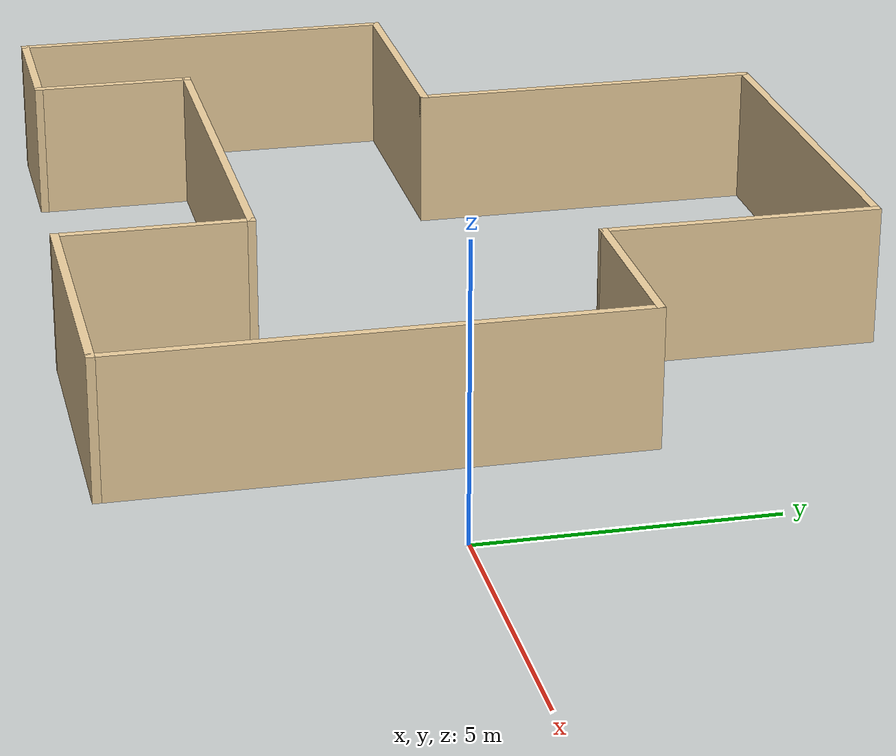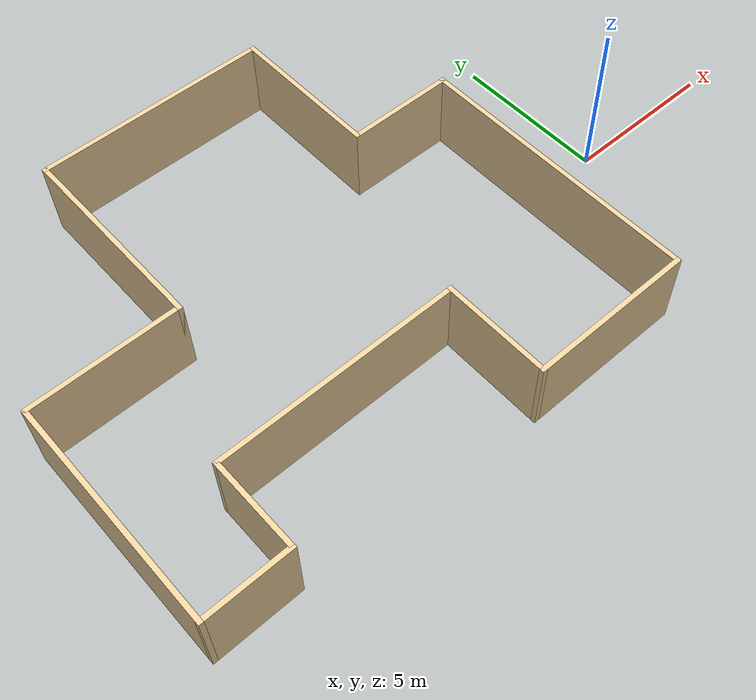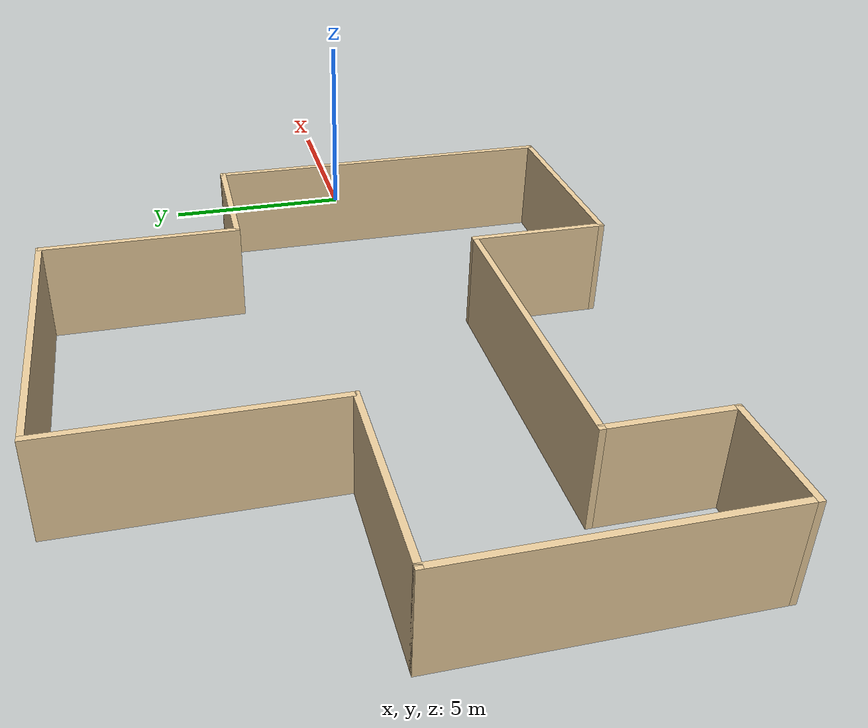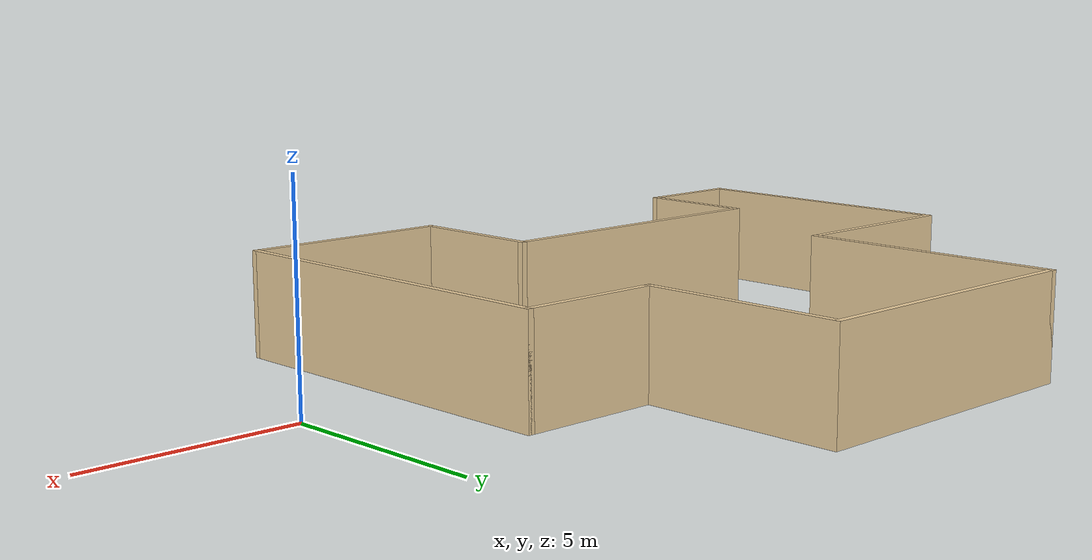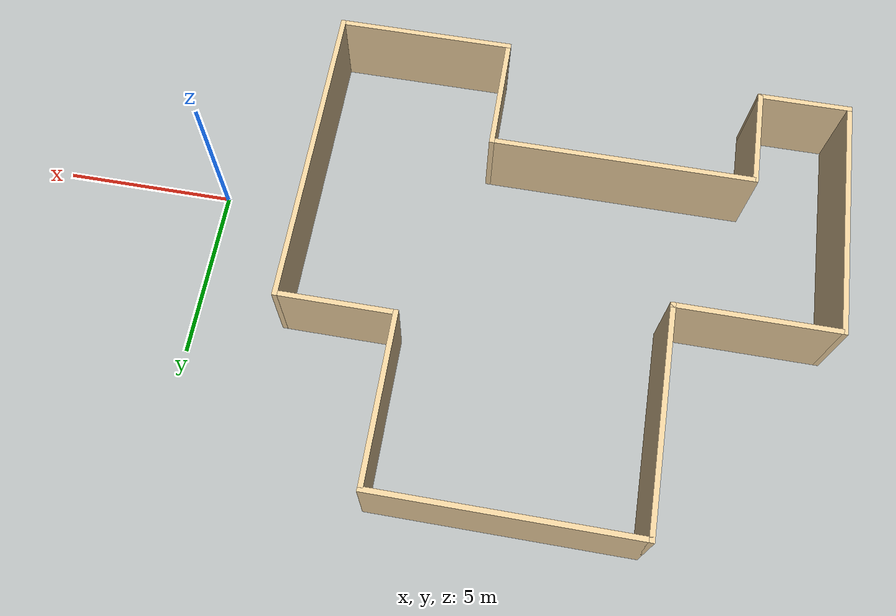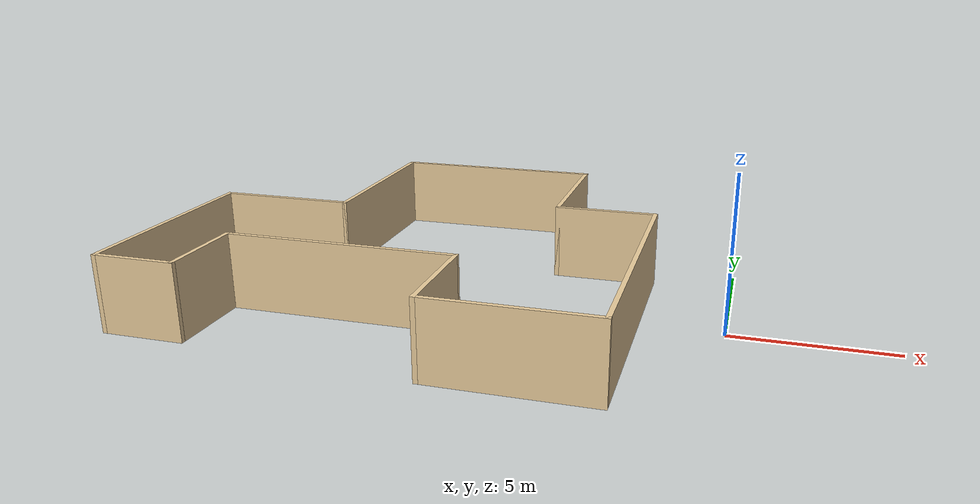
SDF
<?xml version='1.0'?>
<sdf version='1.6'>
  <model name='building_big'>
    <pose frame=''>-10.3305 1.61177 0 0 -0 0</pose>
    <link name='Wall_19'>
      <collision name='Wall_19_Collision'>
        <geometry>
          <box>
            <size>7.5 0.15 2.5</size>
          </box>
        </geometry>
        <pose frame=''>0 0 1.25 0 -0 0</pose>
      </collision>
      <visual name='Wall_19_Visual'>
        <pose frame=''>0 0 1.25 0 -0 0</pose>
        <geometry>
          <box>
            <size>7.5 0.15 2.5</size>
          </box>
        </geometry>
        <material>
          <script>
            <uri>file://media/materials/scripts/gazebo.material</uri>
            <name>Gazebo/Grey</name>
          </script>
          <ambient>0.921569 0.807843 0.615686 1</ambient>
        </material>
        <meta>
          <layer>0</layer>
        </meta>
      </visual>
      <pose frame=''>0.625 6.975 0 0 -0 0</pose>
    </link>
    <link name='Wall_20'>
      <collision name='Wall_20_Collision'>
        <geometry>
          <box>
            <size>5 0.15 2.5</size>
          </box>
        </geometry>
        <pose frame=''>0 0 1.25 0 -0 0</pose>
      </collision>
      <visual name='Wall_20_Visual'>
        <pose frame=''>0 0 1.25 0 -0 0</pose>
        <geometry>
          <box>
            <size>5 0.15 2.5</size>
          </box>
        </geometry>
        <material>
          <script>
            <uri>file://media/materials/scripts/gazebo.material</uri>
            <name>Gazebo/Grey</name>
          </script>
          <ambient>0.921569 0.807843 0.615686 1</ambient>
        </material>
        <meta>
          <layer>0</layer>
        </meta>
      </visual>
      <pose frame=''>4.3 4.55 0 0 0 -1.5708</pose>
    </link>
    <link name='Wall_21'>
      <collision name='Wall_21_Collision'>
        <geometry>
          <box>
            <size>3.5 0.15 2.5</size>
          </box>
        </geometry>
        <pose frame=''>0 0 1.25 0 -0 0</pose>
      </collision>
      <visual name='Wall_21_Visual'>
        <pose frame=''>0 0 1.25 0 -0 0</pose>
        <geometry>
          <box>
            <size>3.5 0.15 2.5</size>
          </box>
        </geometry>
        <material>
          <script>
            <uri>file://media/materials/scripts/gazebo.material</uri>
            <name>Gazebo/Grey</name>
          </script>
          <ambient>0.921569 0.807843 0.615686 1</ambient>
        </material>
        <meta>
          <layer>0</layer>
        </meta>
      </visual>
      <pose frame=''>5.975 2.125 0 0 -0 0</pose>
    </link>
    <link name='Wall_22'>
      <collision name='Wall_22_Collision'>
        <geometry>
          <box>
            <size>9.25 0.15 2.5</size>
          </box>
        </geometry>
        <pose frame=''>0 0 1.25 0 -0 0</pose>
      </collision>
      <visual name='Wall_22_Visual'>
        <pose frame=''>0 0 1.25 0 -0 0</pose>
        <geometry>
          <box>
            <size>9.25 0.15 2.5</size>
          </box>
        </geometry>
        <material>
          <script>
            <uri>file://media/materials/scripts/gazebo.material</uri>
            <name>Gazebo/Grey</name>
          </script>
          <ambient>0.921569 0.807843 0.615686 1</ambient>
        </material>
        <meta>
          <layer>0</layer>
        </meta>
      </visual>
      <pose frame=''>7.65 -2.425 0 0 0 -1.5708</pose>
    </link>
    <link name='Wall_23'>
      <collision name='Wall_23_Collision'>
        <geometry>
          <box>
            <size>5.25 0.15 2.5</size>
          </box>
        </geometry>
        <pose frame=''>0 0 1.25 0 -0 0</pose>
      </collision>
      <visual name='Wall_23_Visual'>
        <pose frame=''>0 0 1.25 0 -0 0</pose>
        <geometry>
          <box>
            <size>5.25 0.15 2.5</size>
          </box>
        </geometry>
        <material>
          <script>
            <uri>file://media/materials/scripts/gazebo.material</uri>
            <name>Gazebo/Grey</name>
          </script>
          <ambient>0.921569 0.807843 0.615686 1</ambient>
        </material>
        <meta>
          <layer>0</layer>
        </meta>
      </visual>
      <pose frame=''>5.1 -6.975 0 0 -0 3.14159</pose>
    </link>
    <link name='Wall_24'>
      <collision name='Wall_24_Collision'>
        <geometry>
          <box>
            <size>3.5 0.15 2.5</size>
          </box>
        </geometry>
        <pose frame=''>0 0 1.25 0 -0 0</pose>
      </collision>
      <visual name='Wall_24_Visual'>
        <pose frame=''>0 0 1.25 0 -0 0</pose>
        <geometry>
          <box>
            <size>3.5 0.15 2.5</size>
          </box>
        </geometry>
        <material>
          <script>
            <uri>file://media/materials/scripts/gazebo.material</uri>
            <name>Gazebo/Grey</name>
          </script>
          <ambient>0.921569 0.807843 0.615686 1</ambient>
        </material>
        <meta>
          <layer>0</layer>
        </meta>
      </visual>
      <pose frame=''>2.55 -5.3 0 0 -0 1.5708</pose>
    </link>
    <link name='Wall_25'>
      <collision name='Wall_25_Collision'>
        <geometry>
          <box>
            <size>7.75 0.15 2.5</size>
          </box>
        </geometry>
        <pose frame=''>0 0 1.25 0 -0 0</pose>
      </collision>
      <visual name='Wall_25_Visual'>
        <pose frame=''>0 0 1.25 0 -0 0</pose>
        <geometry>
          <box>
            <size>7.75 0.15 2.5</size>
          </box>
        </geometry>
        <material>
          <script>
            <uri>file://media/materials/scripts/gazebo.material</uri>
            <name>Gazebo/Grey</name>
          </script>
          <ambient>0.921569 0.807843 0.615686 1</ambient>
        </material>
        <meta>
          <layer>0</layer>
        </meta>
      </visual>
      <pose frame=''>-1.25 -3.625 0 0 -0 3.14159</pose>
    </link>
    <link name='Wall_26'>
      <collision name='Wall_26_Collision'>
        <geometry>
          <box>
            <size>3 0.15 2.5</size>
          </box>
        </geometry>
        <pose frame=''>0 0 1.25 0 -0 0</pose>
      </collision>
      <visual name='Wall_26_Visual'>
        <pose frame=''>0 0 1.25 0 -0 0</pose>
        <geometry>
          <box>
            <size>3 0.15 2.5</size>
          </box>
        </geometry>
        <material>
          <script>
            <uri>file://media/materials/scripts/gazebo.material</uri>
            <name>Gazebo/Grey</name>
          </script>
          <ambient>0.921569 0.807843 0.615686 1</ambient>
        </material>
        <meta>
          <layer>0</layer>
        </meta>
      </visual>
      <pose frame=''>-5.05 -5.05 0 0 0 -1.5708</pose>
    </link>
    <link name='Wall_27'>
      <collision name='Wall_27_Collision'>
        <geometry>
          <box>
            <size>2.75 0.15 2.5</size>
          </box>
        </geometry>
        <pose frame=''>0 0 1.25 0 -0 0</pose>
      </collision>
      <visual name='Wall_27_Visual'>
        <pose frame=''>0 0 1.25 0 -0 0</pose>
        <geometry>
          <box>
            <size>2.75 0.15 2.5</size>
          </box>
        </geometry>
        <material>
          <script>
            <uri>file://media/materials/scripts/gazebo.material</uri>
            <name>Gazebo/Grey</name>
          </script>
          <ambient>0.921569 0.807843 0.615686 1</ambient>
        </material>
        <meta>
          <layer>0</layer>
        </meta>
      </visual>
      <pose frame=''>-6.35 -6.475 0 0 -0 3.14159</pose>
    </link>
    <link name='Wall_28'>
      <collision name='Wall_28_Collision'>
        <geometry>
          <box>
            <size>7.25 0.15 2.5</size>
          </box>
        </geometry>
        <pose frame=''>0 0 1.25 0 -0 0</pose>
      </collision>
      <visual name='Wall_28_Visual'>
        <pose frame=''>0 0 1.25 0 -0 0</pose>
        <geometry>
          <box>
            <size>7.25 0.15 2.5</size>
          </box>
        </geometry>
        <material>
          <script>
            <uri>file://media/materials/scripts/gazebo.material</uri>
            <name>Gazebo/Grey</name>
          </script>
          <ambient>0.921569 0.807843 0.615686 1</ambient>
        </material>
        <meta>
          <layer>0</layer>
        </meta>
      </visual>
      <pose frame=''>-7.65 -2.925 0 0 -0 1.5708</pose>
    </link>
    <link name='Wall_29'>
      <collision name='Wall_29_Collision'>
        <geometry>
          <box>
            <size>4.75 0.15 2.5</size>
          </box>
        </geometry>
        <pose frame=''>0 0 1.25 0 -0 0</pose>
      </collision>
      <visual name='Wall_29_Visual'>
        <pose frame=''>0 0 1.25 0 -0 0</pose>
        <geometry>
          <box>
            <size>4.75 0.15 2.5</size>
          </box>
        </geometry>
        <material>
          <script>
            <uri>file://media/materials/scripts/gazebo.material</uri>
            <name>Gazebo/Grey</name>
          </script>
          <ambient>0.921569 0.807843 0.615686 1</ambient>
        </material>
        <meta>
          <layer>0</layer>
        </meta>
      </visual>
      <pose frame=''>-5.35 0.625 0 0 -0 0</pose>
    </link>
    <link name='Wall_30'>
      <collision name='Wall_30_Collision'>
        <geometry>
          <box>
            <size>6.5 0.15 2.5</size>
          </box>
        </geometry>
        <pose frame=''>0 0 1.25 0 -0 0</pose>
      </collision>
      <visual name='Wall_30_Visual'>
        <pose frame=''>0 0 1.25 0 -0 0</pose>
        <geometry>
          <box>
            <size>6.5 0.15 2.5</size>
          </box>
        </geometry>
        <material>
          <script>
            <uri>file://media/materials/scripts/gazebo.material</uri>
            <name>Gazebo/Grey</name>
          </script>
          <ambient>0.921569 0.807843 0.615686 1</ambient>
        </material>
        <meta>
          <layer>0</layer>
        </meta>
      </visual>
      <pose frame=''>-3.05 3.8 0 0 -0 1.5708</pose>
    </link>
    <static>1</static>
  </model>
</sdf>
